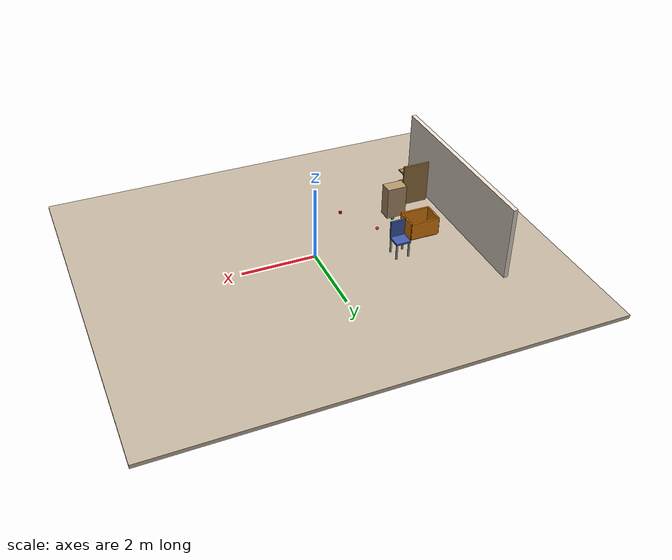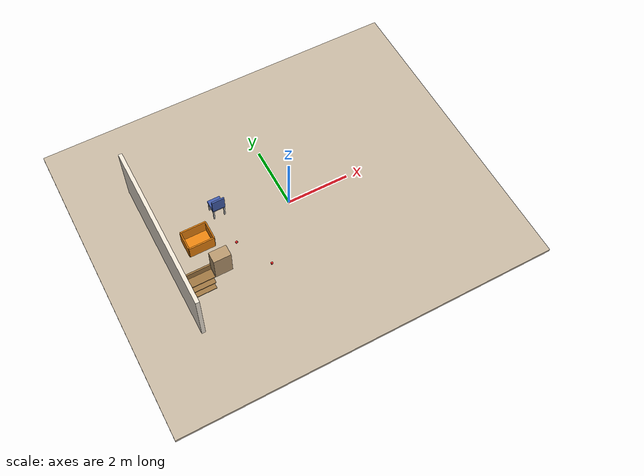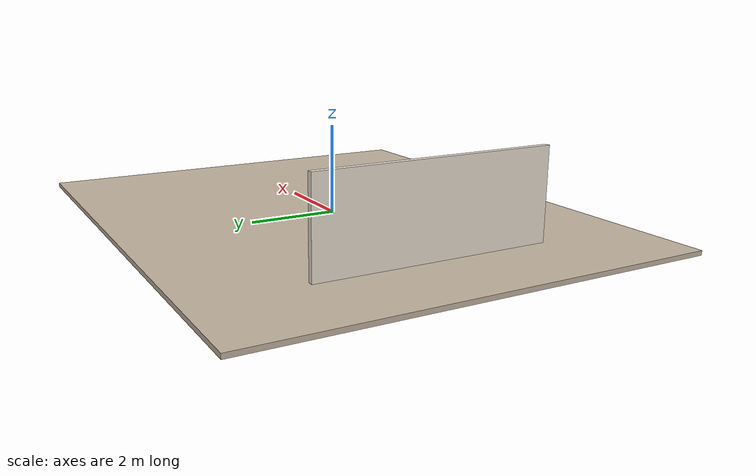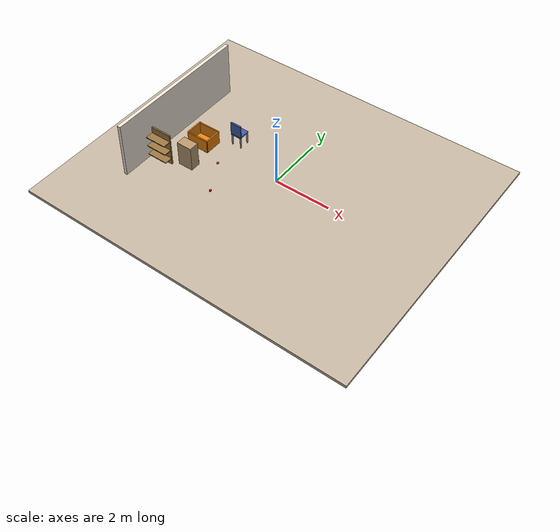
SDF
<sdf version="1.8">
 <world name="home_world">
  <model name="ground_plane">
   <static>true</static>
   <link name="link">
    <collision name="collision">
     <pose>0 0 -0.05 0 0 0</pose>
     <geometry><box><size>12 10 0.1</size></box></geometry>
     <surface>
      <friction><ode><mu>1.0</mu><mu2>1.0</mu2></ode></friction>
      <contact><ode><kp>1000000</kp><kd>100</kd></ode></contact>
     </surface>
    </collision>
    <visual name="visual">
     <pose>0 0 -0.05 0 0 0</pose>
     <geometry><box><size>12 10 0.1</size></box></geometry>
     <material><ambient>0.76 0.70 0.62 1</ambient><diffuse>0.76 0.70 0.62 1</diffuse></material>
    </visual>
   </link>
  </model>
  <model name="wall_left">
   <static>true</static>
   <pose>-4.06 0 1.0 0 0 0</pose>
   <link name="link">
    <collision name="col">
     <geometry><box><size>0.12 5.24 2.0</size></box></geometry>
     <surface><friction><ode><mu>1.0</mu><mu2>1.0</mu2></ode></friction></surface>
    </collision>
    <visual name="vis">
     <geometry><box><size>0.12 5.24 2.0</size></box></geometry>
     <material><ambient>0.92 0.88 0.82 1</ambient><diffuse>0.92 0.88 0.82 1</diffuse></material>
    </visual>
   </link>
  </model>
  <model name="collection_box">
   <static>true</static>
   <pose>-3.0 0.0 0 0 0 0</pose>
   <link name="link">
    <collision name="floor_col">
     <pose>0 0 0.03 0 0 0</pose>
     <geometry><box><size>0.80 0.60 0.06</size></box></geometry>
     <surface><friction><ode><mu>1.2</mu><mu2>1.2</mu2></ode></friction></surface>
    </collision>
    <visual name="floor_vis">
     <pose>0 0 0.03 0 0 0</pose>
     <geometry><box><size>0.80 0.60 0.06</size></box></geometry>
     <material><ambient>0.90 0.50 0.05 1</ambient><diffuse>0.90 0.50 0.05 1</diffuse></material>
    </visual>
    <collision name="fw_col">
     <pose>0 -0.30 0.27 0 0 0</pose>
     <geometry><box><size>0.80 0.04 0.48</size></box></geometry>
     <surface><friction><ode><mu>1.2</mu><mu2>1.2</mu2></ode></friction></surface>
    </collision>
    <visual name="fw_vis">
     <pose>0 -0.30 0.27 0 0 0</pose>
     <geometry><box><size>0.80 0.04 0.48</size></box></geometry>
     <material><ambient>0.90 0.50 0.05 1</ambient><diffuse>0.90 0.50 0.05 1</diffuse></material>
    </visual>
    <collision name="bw_col">
     <pose>0  0.30 0.27 0 0 0</pose>
     <geometry><box><size>0.80 0.04 0.48</size></box></geometry>
     <surface><friction><ode><mu>1.2</mu><mu2>1.2</mu2></ode></friction></surface>
    </collision>
    <visual name="bw_vis">
     <pose>0  0.30 0.27 0 0 0</pose>
     <geometry><box><size>0.80 0.04 0.48</size></box></geometry>
     <material><ambient>0.90 0.50 0.05 1</ambient><diffuse>0.90 0.50 0.05 1</diffuse></material>
    </visual>
    <collision name="lw_col">
     <pose>0.40 0 0.27 0 0 0</pose>
     <geometry><box><size>0.04 0.60 0.48</size></box></geometry>
     <surface><friction><ode><mu>1.2</mu><mu2>1.2</mu2></ode></friction></surface>
    </collision>
    <visual name="lw_vis">
     <pose>0.40 0 0.27 0 0 0</pose>
     <geometry><box><size>0.04 0.60 0.48</size></box></geometry>
     <material><ambient>0.90 0.50 0.05 1</ambient><diffuse>0.90 0.50 0.05 1</diffuse></material>
    </visual>
    <collision name="rw_col">
     <pose>-0.40 0 0.27 0 0 0</pose>
     <geometry><box><size>0.04 0.60 0.48</size></box></geometry>
     <surface><friction><ode><mu>1.2</mu><mu2>1.2</mu2></ode></friction></surface>
    </collision>
    <visual name="rw_vis">
     <pose>-0.40 0 0.27 0 0 0</pose>
     <geometry><box><size>0.04 0.60 0.48</size></box></geometry>
     <material><ambient>0.90 0.50 0.05 1</ambient><diffuse>0.90 0.50 0.05 1</diffuse></material>
    </visual>
   </link>
  </model>
  <model name="chair_a1">
   <static>true</static>
   <pose>-2.05 0.72 0 0 0 3.14159</pose>
   <link name="link">
    <collision name="s">
     <pose>0 0 0.45 0 0 0</pose>
     <geometry><box><size>0.40 0.40 0.05</size></box></geometry>
    </collision>
    <visual name="sv">
     <pose>0 0 0.45 0 0 0</pose>
     <geometry><box><size>0.40 0.40 0.05</size></box></geometry>
     <material><ambient>0.25 0.35 0.65 1</ambient><diffuse>0.25 0.35 0.65 1</diffuse></material>
    </visual>
    <collision name="b">
     <pose>0 0.18 0.70 0 0 0</pose>
     <geometry><box><size>0.40 0.05 0.46</size></box></geometry>
    </collision>
    <visual name="bv">
     <pose>0 0.18 0.70 0 0 0</pose>
     <geometry><box><size>0.40 0.05 0.46</size></box></geometry>
     <material><ambient>0.25 0.35 0.65 1</ambient><diffuse>0.25 0.35 0.65 1</diffuse></material>
    </visual>
    <collision name="l1">
     <pose>0.17  0.17 0.22 0 0 0</pose>
     <geometry><box><size>0.04 0.04 0.44</size></box></geometry>
    </collision>
    <visual name="lv1">
     <pose>0.17  0.17 0.22 0 0 0</pose>
     <geometry><box><size>0.04 0.04 0.44</size></box></geometry>
    </visual>
    <collision name="l2">
     <pose>-0.17  0.17 0.22 0 0 0</pose>
     <geometry><box><size>0.04 0.04 0.44</size></box></geometry>
    </collision>
    <visual name="lv2">
     <pose>-0.17  0.17 0.22 0 0 0</pose>
     <geometry><box><size>0.04 0.04 0.44</size></box></geometry>
    </visual>
    <collision name="l3">
     <pose>0.17 -0.17 0.22 0 0 0</pose>
     <geometry><box><size>0.04 0.04 0.44</size></box></geometry>
    </collision>
    <visual name="lv3">
     <pose>0.17 -0.17 0.22 0 0 0</pose>
     <geometry><box><size>0.04 0.04 0.44</size></box></geometry>
    </visual>
    <collision name="l4">
     <pose>-0.17 -0.17 0.22 0 0 0</pose>
     <geometry><box><size>0.04 0.04 0.44</size></box></geometry>
    </collision>
    <visual name="lv4">
     <pose>-0.17 -0.17 0.22 0 0 0</pose>
     <geometry><box><size>0.04 0.04 0.44</size></box></geometry>
    </visual>
   </link>
  </model>
  <model name="shelf_a">
   <static>true</static>
   <pose>-3.55 -1.45 0 0 0 0</pose>
   <link name="link">
    <collision name="back">
     <pose>0 0.08 0.6 0 0 0</pose>
     <geometry><box><size>0.75 0.05 1.2</size></box></geometry>
     <surface><friction><ode><mu>1.0</mu><mu2>1.0</mu2></ode></friction></surface>
    </collision>
    <visual name="backv">
     <pose>0 0.08 0.6 0 0 0</pose>
     <geometry><box><size>0.75 0.05 1.2</size></box></geometry>
     <material><ambient>0.6 0.45 0.25 1</ambient><diffuse>0.6 0.45 0.25 1</diffuse></material>
    </visual>
    <collision name="s1">
     <pose>0 -0.08 0.25 0 0 0</pose>
     <geometry><box><size>0.75 0.28 0.03</size></box></geometry>
    </collision>
    <visual name="s1v">
     <pose>0 -0.08 0.25 0 0 0</pose>
     <geometry><box><size>0.75 0.28 0.03</size></box></geometry>
     <material><ambient>0.6 0.45 0.25 1</ambient><diffuse>0.6 0.45 0.25 1</diffuse></material>
    </visual>
    <collision name="s2">
     <pose>0 -0.08 0.60 0 0 0</pose>
     <geometry><box><size>0.75 0.28 0.03</size></box></geometry>
    </collision>
    <visual name="s2v">
     <pose>0 -0.08 0.60 0 0 0</pose>
     <geometry><box><size>0.75 0.28 0.03</size></box></geometry>
     <material><ambient>0.6 0.45 0.25 1</ambient><diffuse>0.6 0.45 0.25 1</diffuse></material>
    </visual>
    <collision name="s3">
     <pose>0 -0.08 0.95 0 0 0</pose>
     <geometry><box><size>0.75 0.28 0.03</size></box></geometry>
    </collision>
    <visual name="s3v">
     <pose>0 -0.08 0.95 0 0 0</pose>
     <geometry><box><size>0.75 0.28 0.03</size></box></geometry>
     <material><ambient>0.6 0.45 0.25 1</ambient><diffuse>0.6 0.45 0.25 1</diffuse></material>
    </visual>
   </link>
  </model>
  <model name="passage_block_a">
   <static>true</static>
   <pose>-2.75 -1.05 0 0 0 0</pose>
   <link name="link">
    <collision name="col">
     <pose>0 0 0.45 0 0 0</pose>
     <geometry><box><size>0.55 0.35 0.90</size></box></geometry>
     <surface><friction><ode><mu>1.0</mu><mu2>1.0</mu2></ode></friction></surface>
    </collision>
    <visual name="vis">
     <pose>0 0 0.45 0 0 0</pose>
     <geometry><box><size>0.55 0.35 0.90</size></box></geometry>
     <material><ambient>0.70 0.58 0.42 1</ambient><diffuse>0.70 0.58 0.42 1</diffuse></material>
    </visual>
   </link>
  </model>
  <model name="floor_a_block_red">
   <static>false</static>
   <pose>-1.4 -1.6 0.030 0 0 0</pose>
   <link name="link">
    <inertial>
     <mass>0.20</mass>
     <inertia>
      <ixx>0.000120</ixx>
      <iyy>0.000120</iyy>
      <izz>0.000120</izz>
      <ixy>0</ixy>
      <ixz>0</ixz>
      <iyz>0</iyz>
     </inertia>
    </inertial>
    <collision name="col">
     <geometry><box><size>0.06 0.06 0.06</size></box></geometry>
     <surface>
      <friction><ode><mu>0.6</mu><mu2>0.6</mu2></ode></friction>
      <contact><ode><kp>500000</kp><kd>10</kd><min_depth>0.001</min_depth><max_vel>0.1</max_vel></ode></contact>
      <bounce><restitution_coefficient>0.0</restitution_coefficient><threshold>100000</threshold></bounce>
     </surface>
    </collision>
    <visual name="vis">
     <geometry><box><size>0.06 0.06 0.06</size></box></geometry>
     <material><ambient>0.90 0.12 0.12 1</ambient><diffuse>0.90 0.12 0.12 1</diffuse></material>
    </visual>
   </link>
  </model>
  <model name="floor_a_block_green">
   <static>false</static>
   <pose>-2.6 -0.8 0.025 0 0 0</pose>
   <link name="link">
    <inertial>
     <mass>0.20</mass>
     <inertia>
      <ixx>0.000083</ixx>
      <iyy>0.000120</iyy>
      <izz>0.000100</izz>
      <ixy>0</ixy>
      <ixz>0</ixz>
      <iyz>0</iyz>
     </inertia>
    </inertial>
    <collision name="col">
     <geometry><box><size>0.07 0.05 0.05</size></box></geometry>
     <surface>
      <friction><ode><mu>0.6</mu><mu2>0.6</mu2></ode></friction>
      <contact><ode><kp>500000</kp><kd>10</kd><min_depth>0.001</min_depth><max_vel>0.1</max_vel></ode></contact>
      <bounce><restitution_coefficient>0.0</restitution_coefficient><threshold>100000</threshold></bounce>
     </surface>
    </collision>
    <visual name="vis">
     <geometry><box><size>0.07 0.05 0.05</size></box></geometry>
     <material><ambient>0.12 0.75 0.12 1</ambient><diffuse>0.12 0.75 0.12 1</diffuse></material>
    </visual>
   </link>
  </model>
  <model name="floor_a_ball_red">
   <static>false</static>
   <pose>-2.0 -0.5 0.040 0 0 0</pose>
   <link name="link">
    <inertial>
     <mass>0.12</mass>
     <inertia>
      <ixx>0.0000768</ixx>
      <iyy>0.0000768</iyy>
      <izz>0.0000768</izz>
      <ixy>0</ixy>
      <ixz>0</ixz>
      <iyz>0</iyz>
     </inertia>
    </inertial>
    <collision name="col">
     <geometry><sphere><radius>0.04</radius></sphere></geometry>
     <surface>
      <friction><ode><mu>0.6</mu><mu2>0.6</mu2></ode></friction>
      <contact><ode><kp>500000</kp><kd>10</kd><min_depth>0.001</min_depth><max_vel>0.1</max_vel></ode></contact>
      <bounce><restitution_coefficient>0.0</restitution_coefficient><threshold>100000</threshold></bounce>
     </surface>
    </collision>
    <visual name="vis">
     <geometry><sphere><radius>0.04</radius></sphere></geometry>
     <material><ambient>0.92 0.15 0.15 1</ambient><diffuse>0.92 0.15 0.15 1</diffuse></material>
    </visual>
   </link>
  </model>
 </world>
</sdf>
